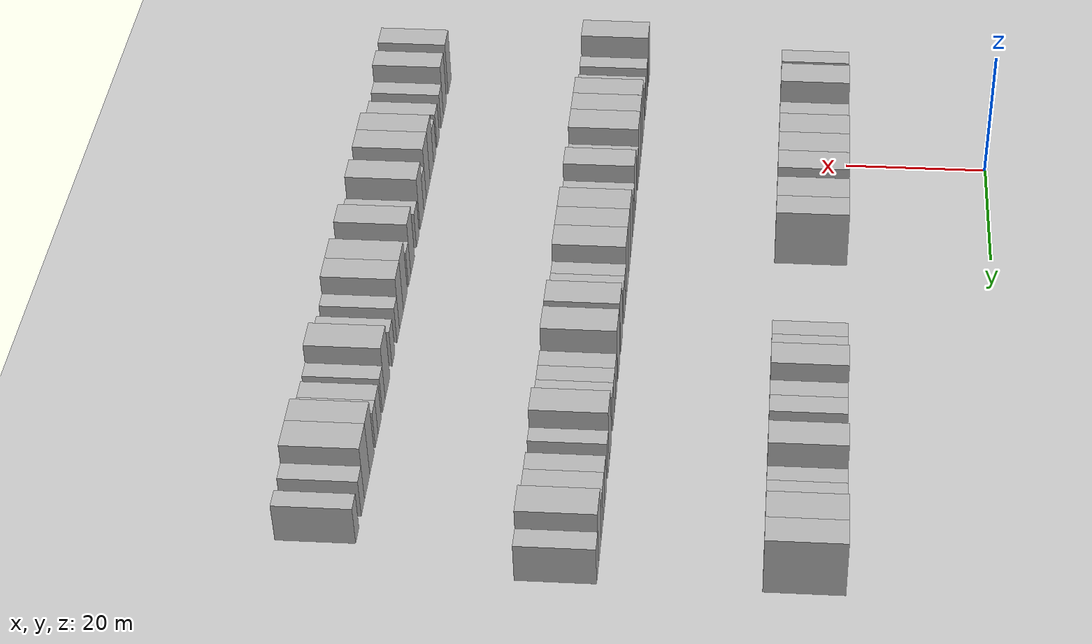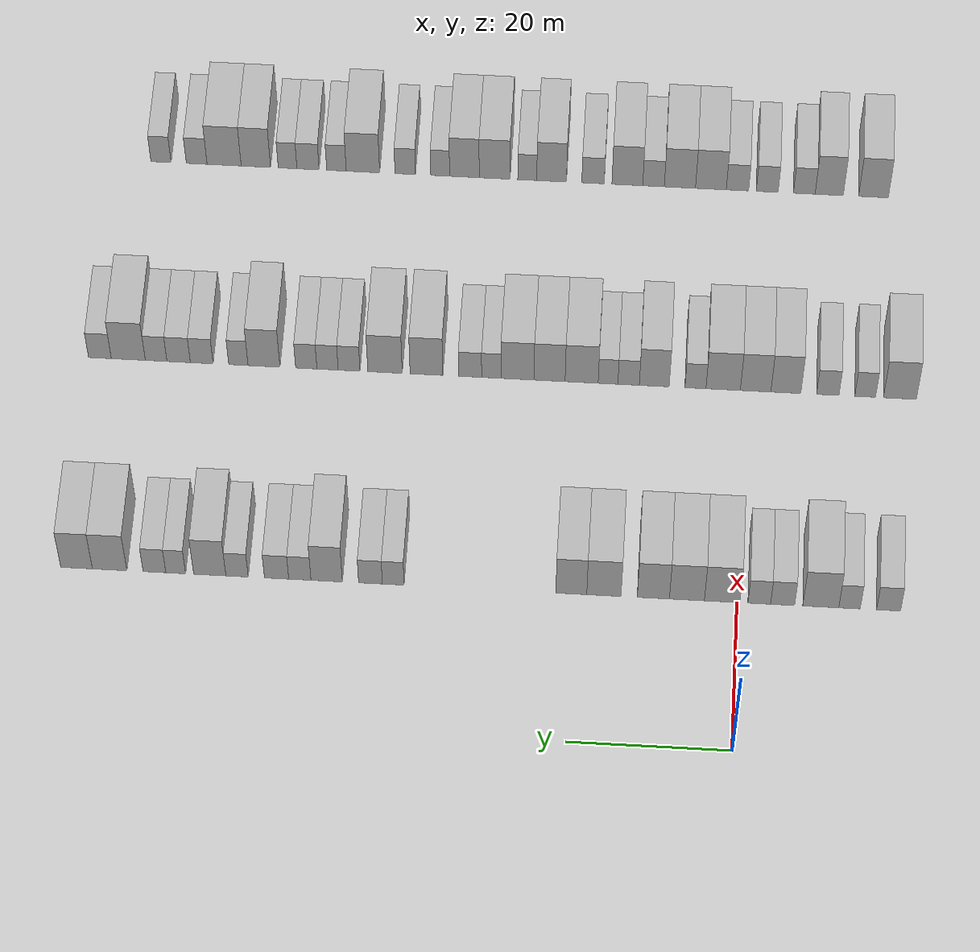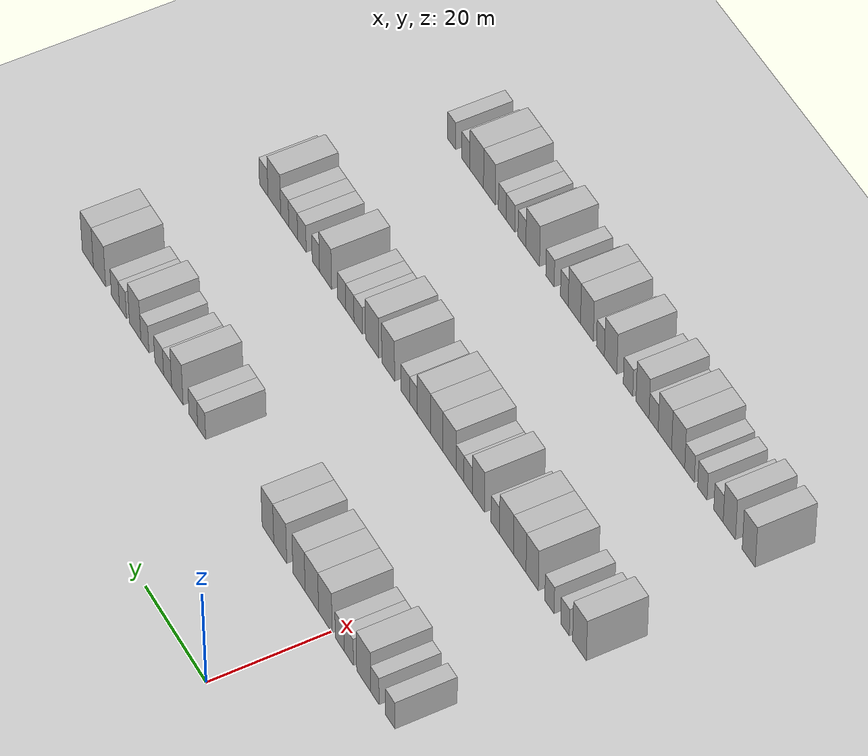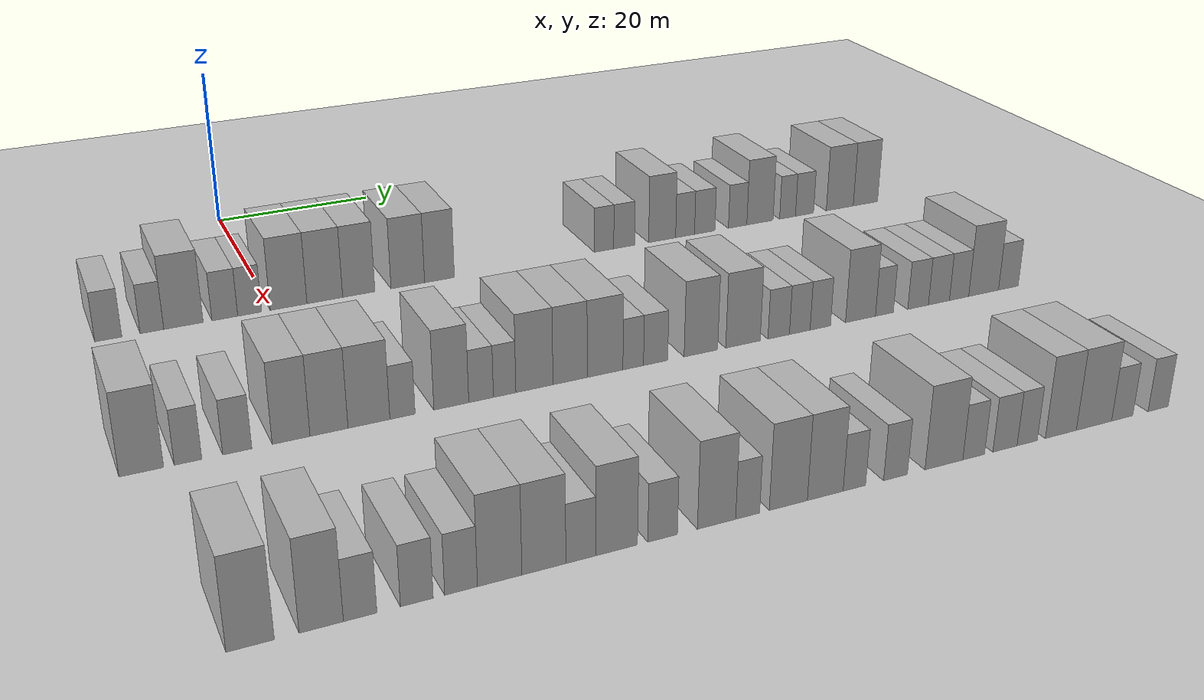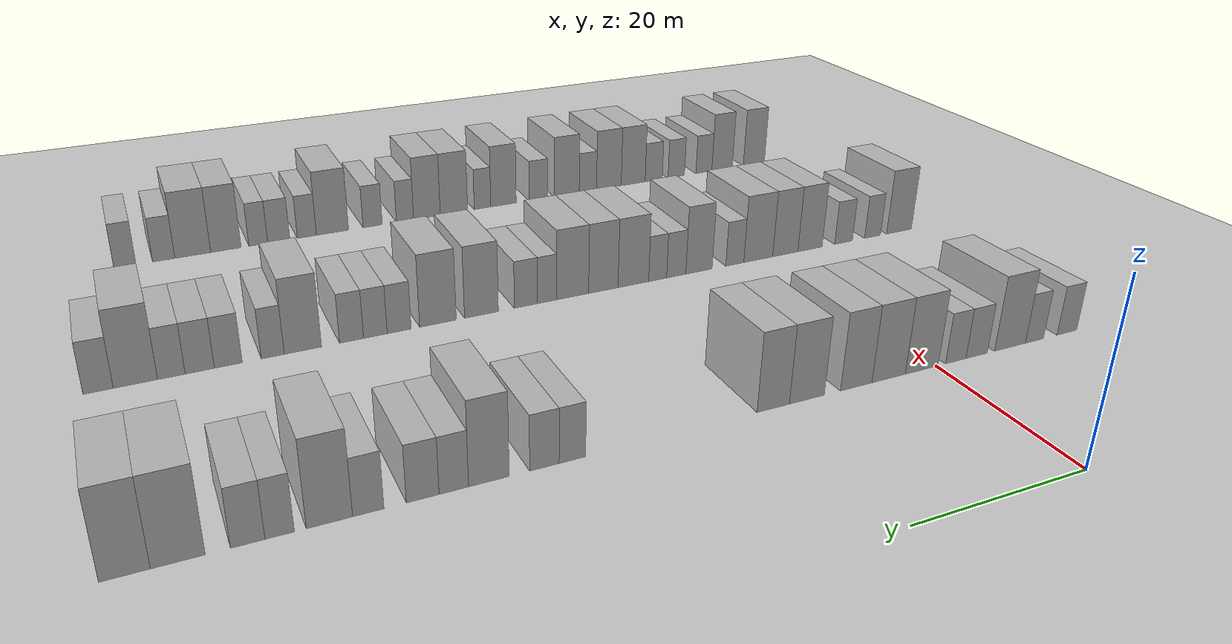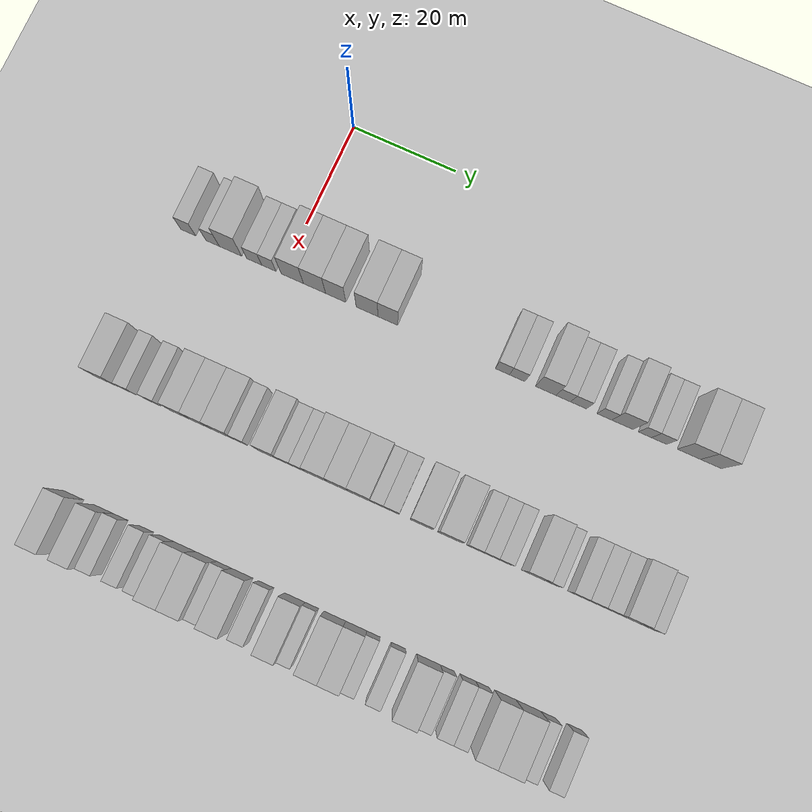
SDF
<sdf version="1.6">
 <world name="default">
  <include><name>ground_plane_1</name><uri>model://HANNAS_ground_plane</uri></include>
  <model name="building_108">
   <static>1</static>
   <pose>25.0000 -18.5001 0 0.000000 0.000000 0.000000</pose>
   <link name="link">
    <pose>0 0 3.00 0 0 0</pose>
    <collision name="collision"><geometry><box><size>10.0000 2.9320 6.0000</size></box></geometry></collision>
    <visual name="visual">
     <cast_shadows>0</cast_shadows>
     <geometry><box><size>10.0000 2.9320 6.0000</size></box></geometry>
     <material>
      <script>
       <uri>model://HANNAS_wall/materials/scripts</uri>
       <uri>model://HANNAS_wall/materials/textures</uri>
       <name>vrc/HANNAS_wall</name>
      </script>
     </material>
    </visual>
   </link>
  </model>
  <model name="building_109">
   <static>1</static>
   <pose>25.0000 -13.7276 0 0.000000 0.000000 0.000000</pose>
   <link name="link">
    <pose>0 0 3.00 0 0 0</pose>
    <collision name="collision"><geometry><box><size>10.0000 2.6130 6.0000</size></box></geometry></collision>
    <visual name="visual">
     <cast_shadows>0</cast_shadows>
     <geometry><box><size>10.0000 2.6130 6.0000</size></box></geometry>
     <material>
      <script>
       <uri>model://HANNAS_wall/materials/scripts</uri>
       <uri>model://HANNAS_wall/materials/textures</uri>
       <name>vrc/HANNAS_wall</name>
      </script>
     </material>
    </visual>
   </link>
  </model>
  <model name="building_110">
   <static>1</static>
   <pose>25.0000 -10.2153 0 0.000000 0.000000 0.000000</pose>
   <link name="link">
    <pose>0 0 4.50 0 0 0</pose>
    <collision name="collision"><geometry><box><size>10.0000 4.4118 9.0000</size></box></geometry></collision>
    <visual name="visual">
     <cast_shadows>0</cast_shadows>
     <geometry><box><size>10.0000 4.4118 9.0000</size></box></geometry>
     <material>
      <script>
       <uri>model://HANNAS_wall/materials/scripts</uri>
       <uri>model://HANNAS_wall/materials/textures</uri>
       <name>vrc/HANNAS_wall</name>
      </script>
     </material>
    </visual>
   </link>
  </model>
  <model name="building_111">
   <static>1</static>
   <pose>25.0000 -5.5347 0 0.000000 0.000000 0.000000</pose>
   <link name="link">
    <pose>0 0 3.00 0 0 0</pose>
    <collision name="collision"><geometry><box><size>10.0000 2.9493 6.0000</size></box></geometry></collision>
    <visual name="visual">
     <cast_shadows>0</cast_shadows>
     <geometry><box><size>10.0000 2.9493 6.0000</size></box></geometry>
     <material>
      <script>
       <uri>model://HANNAS_wall/materials/scripts</uri>
       <uri>model://HANNAS_wall/materials/textures</uri>
       <name>vrc/HANNAS_wall</name>
      </script>
     </material>
    </visual>
   </link>
  </model>
  <model name="building_112">
   <static>1</static>
   <pose>25.0000 -2.6738 0 0.000000 0.000000 0.000000</pose>
   <link name="link">
    <pose>0 0 3.00 0 0 0</pose>
    <collision name="collision"><geometry><box><size>10.0000 2.7725 6.0000</size></box></geometry></collision>
    <visual name="visual">
     <cast_shadows>0</cast_shadows>
     <geometry><box><size>10.0000 2.7725 6.0000</size></box></geometry>
     <material>
      <script>
       <uri>model://HANNAS_wall/materials/scripts</uri>
       <uri>model://HANNAS_wall/materials/textures</uri>
       <name>vrc/HANNAS_wall</name>
      </script>
     </material>
    </visual>
   </link>
  </model>
  <model name="building_113">
   <static>1</static>
   <pose>25.0000 1.8818 0 0.000000 0.000000 0.000000</pose>
   <link name="link">
    <pose>0 0 4.50 0 0 0</pose>
    <collision name="collision"><geometry><box><size>10.0000 4.3386 9.0000</size></box></geometry></collision>
    <visual name="visual">
     <cast_shadows>0</cast_shadows>
     <geometry><box><size>10.0000 4.3386 9.0000</size></box></geometry>
     <material>
      <script>
       <uri>model://HANNAS_wall/materials/scripts</uri>
       <uri>model://HANNAS_wall/materials/textures</uri>
       <name>vrc/HANNAS_wall</name>
      </script>
     </material>
    </visual>
   </link>
  </model>
  <model name="building_114">
   <static>1</static>
   <pose>25.0000 6.1983 0 0.000000 0.000000 0.000000</pose>
   <link name="link">
    <pose>0 0 4.50 0 0 0</pose>
    <collision name="collision"><geometry><box><size>10.0000 4.2945 9.0000</size></box></geometry></collision>
    <visual name="visual">
     <cast_shadows>0</cast_shadows>
     <geometry><box><size>10.0000 4.2945 9.0000</size></box></geometry>
     <material>
      <script>
       <uri>model://HANNAS_wall/materials/scripts</uri>
       <uri>model://HANNAS_wall/materials/textures</uri>
       <name>vrc/HANNAS_wall</name>
      </script>
     </material>
    </visual>
   </link>
  </model>
  <model name="building_115">
   <static>1</static>
   <pose>25.0000 10.3132 0 0.000000 0.000000 0.000000</pose>
   <link name="link">
    <pose>0 0 4.50 0 0 0</pose>
    <collision name="collision"><geometry><box><size>10.0000 3.9354 9.0000</size></box></geometry></collision>
    <visual name="visual">
     <cast_shadows>0</cast_shadows>
     <geometry><box><size>10.0000 3.9354 9.0000</size></box></geometry>
     <material>
      <script>
       <uri>model://HANNAS_wall/materials/scripts</uri>
       <uri>model://HANNAS_wall/materials/textures</uri>
       <name>vrc/HANNAS_wall</name>
      </script>
     </material>
    </visual>
   </link>
  </model>
  <model name="building_116">
   <static>1</static>
   <pose>25.0000 16.3832 0 0.000000 0.000000 0.000000</pose>
   <link name="link">
    <pose>0 0 4.50 0 0 0</pose>
    <collision name="collision"><geometry><box><size>10.0000 4.2046 9.0000</size></box></geometry></collision>
    <visual name="visual">
     <cast_shadows>0</cast_shadows>
     <geometry><box><size>10.0000 4.2046 9.0000</size></box></geometry>
     <material>
      <script>
       <uri>model://HANNAS_wall/materials/scripts</uri>
       <uri>model://HANNAS_wall/materials/textures</uri>
       <name>vrc/HANNAS_wall</name>
      </script>
     </material>
    </visual>
   </link>
  </model>
  <model name="building_117">
   <static>1</static>
   <pose>25.0000 20.3826 0 0.000000 0.000000 0.000000</pose>
   <link name="link">
    <pose>0 0 4.50 0 0 0</pose>
    <collision name="collision"><geometry><box><size>10.0000 3.7941 9.0000</size></box></geometry></collision>
    <visual name="visual">
     <cast_shadows>0</cast_shadows>
     <geometry><box><size>10.0000 3.7941 9.0000</size></box></geometry>
     <material>
      <script>
       <uri>model://HANNAS_wall/materials/scripts</uri>
       <uri>model://HANNAS_wall/materials/textures</uri>
       <name>vrc/HANNAS_wall</name>
      </script>
     </material>
    </visual>
   </link>
  </model>
  <model name="building_118">
   <static>1</static>
   <pose>25.0000 42.2936 0 0.000000 0.000000 0.000000</pose>
   <link name="link">
    <pose>0 0 3.00 0 0 0</pose>
    <collision name="collision"><geometry><box><size>10.0000 2.6760 6.0000</size></box></geometry></collision>
    <visual name="visual">
     <cast_shadows>0</cast_shadows>
     <geometry><box><size>10.0000 2.6760 6.0000</size></box></geometry>
     <material>
      <script>
       <uri>model://HANNAS_wall/materials/scripts</uri>
       <uri>model://HANNAS_wall/materials/textures</uri>
       <name>vrc/HANNAS_wall</name>
      </script>
     </material>
    </visual>
   </link>
  </model>
  <model name="building_119">
   <static>1</static>
   <pose>25.0000 45.0932 0 0.000000 0.000000 0.000000</pose>
   <link name="link">
    <pose>0 0 3.00 0 0 0</pose>
    <collision name="collision"><geometry><box><size>10.0000 2.9232 6.0000</size></box></geometry></collision>
    <visual name="visual">
     <cast_shadows>0</cast_shadows>
     <geometry><box><size>10.0000 2.9232 6.0000</size></box></geometry>
     <material>
      <script>
       <uri>model://HANNAS_wall/materials/scripts</uri>
       <uri>model://HANNAS_wall/materials/textures</uri>
       <name>vrc/HANNAS_wall</name>
      </script>
     </material>
    </visual>
   </link>
  </model>
  <model name="building_120">
   <static>1</static>
   <pose>25.0000 50.4909 0 0.000000 0.000000 0.000000</pose>
   <link name="link">
    <pose>0 0 4.50 0 0 0</pose>
    <collision name="collision"><geometry><box><size>10.0000 3.8721 9.0000</size></box></geometry></collision>
    <visual name="visual">
     <cast_shadows>0</cast_shadows>
     <geometry><box><size>10.0000 3.8721 9.0000</size></box></geometry>
     <material>
      <script>
       <uri>model://HANNAS_wall/materials/scripts</uri>
       <uri>model://HANNAS_wall/materials/textures</uri>
       <name>vrc/HANNAS_wall</name>
      </script>
     </material>
    </visual>
   </link>
  </model>
  <model name="building_121">
   <static>1</static>
   <pose>25.0000 53.7997 0 0.000000 0.000000 0.000000</pose>
   <link name="link">
    <pose>0 0 3.00 0 0 0</pose>
    <collision name="collision"><geometry><box><size>10.0000 2.7457 6.0000</size></box></geometry></collision>
    <visual name="visual">
     <cast_shadows>0</cast_shadows>
     <geometry><box><size>10.0000 2.7457 6.0000</size></box></geometry>
     <material>
      <script>
       <uri>model://HANNAS_wall/materials/scripts</uri>
       <uri>model://HANNAS_wall/materials/textures</uri>
       <name>vrc/HANNAS_wall</name>
      </script>
     </material>
    </visual>
   </link>
  </model>
  <model name="building_122">
   <static>1</static>
   <pose>25.0000 56.6708 0 0.000000 0.000000 0.000000</pose>
   <link name="link">
    <pose>0 0 3.00 0 0 0</pose>
    <collision name="collision"><geometry><box><size>10.0000 2.9964 6.0000</size></box></geometry></collision>
    <visual name="visual">
     <cast_shadows>0</cast_shadows>
     <geometry><box><size>10.0000 2.9964 6.0000</size></box></geometry>
     <material>
      <script>
       <uri>model://HANNAS_wall/materials/scripts</uri>
       <uri>model://HANNAS_wall/materials/textures</uri>
       <name>vrc/HANNAS_wall</name>
      </script>
     </material>
    </visual>
   </link>
  </model>
  <model name="building_123">
   <static>1</static>
   <pose>25.0000 61.5478 0 0.000000 0.000000 0.000000</pose>
   <link name="link">
    <pose>0 0 3.00 0 0 0</pose>
    <collision name="collision"><geometry><box><size>10.0000 2.7576 6.0000</size></box></geometry></collision>
    <visual name="visual">
     <cast_shadows>0</cast_shadows>
     <geometry><box><size>10.0000 2.7576 6.0000</size></box></geometry>
     <material>
      <script>
       <uri>model://HANNAS_wall/materials/scripts</uri>
       <uri>model://HANNAS_wall/materials/textures</uri>
       <name>vrc/HANNAS_wall</name>
      </script>
     </material>
    </visual>
   </link>
  </model>
  <model name="building_124">
   <static>1</static>
   <pose>25.0000 64.9143 0 0.000000 0.000000 0.000000</pose>
   <link name="link">
    <pose>0 0 4.50 0 0 0</pose>
    <collision name="collision"><geometry><box><size>10.0000 3.9753 9.0000</size></box></geometry></collision>
    <visual name="visual">
     <cast_shadows>0</cast_shadows>
     <geometry><box><size>10.0000 3.9753 9.0000</size></box></geometry>
     <material>
      <script>
       <uri>model://HANNAS_wall/materials/scripts</uri>
       <uri>model://HANNAS_wall/materials/textures</uri>
       <name>vrc/HANNAS_wall</name>
      </script>
     </material>
    </visual>
   </link>
  </model>
  <model name="building_125">
   <static>1</static>
   <pose>25.0000 69.1239 0 0.000000 0.000000 0.000000</pose>
   <link name="link">
    <pose>0 0 3.00 0 0 0</pose>
    <collision name="collision"><geometry><box><size>10.0000 2.4438 6.0000</size></box></geometry></collision>
    <visual name="visual">
     <cast_shadows>0</cast_shadows>
     <geometry><box><size>10.0000 2.4438 6.0000</size></box></geometry>
     <material>
      <script>
       <uri>model://HANNAS_wall/materials/scripts</uri>
       <uri>model://HANNAS_wall/materials/textures</uri>
       <name>vrc/HANNAS_wall</name>
      </script>
     </material>
    </visual>
   </link>
  </model>
  <model name="building_126">
   <static>1</static>
   <pose>25.0000 71.7497 0 0.000000 0.000000 0.000000</pose>
   <link name="link">
    <pose>0 0 3.00 0 0 0</pose>
    <collision name="collision"><geometry><box><size>10.0000 2.8078 6.0000</size></box></geometry></collision>
    <visual name="visual">
     <cast_shadows>0</cast_shadows>
     <geometry><box><size>10.0000 2.8078 6.0000</size></box></geometry>
     <material>
      <script>
       <uri>model://HANNAS_wall/materials/scripts</uri>
       <uri>model://HANNAS_wall/materials/textures</uri>
       <name>vrc/HANNAS_wall</name>
      </script>
     </material>
    </visual>
   </link>
  </model>
  <model name="building_127">
   <static>1</static>
   <pose>25.0000 77.2925 0 0.000000 0.000000 0.000000</pose>
   <link name="link">
    <pose>0 0 4.50 0 0 0</pose>
    <collision name="collision"><geometry><box><size>10.0000 4.2779 9.0000</size></box></geometry></collision>
    <visual name="visual">
     <cast_shadows>0</cast_shadows>
     <geometry><box><size>10.0000 4.2779 9.0000</size></box></geometry>
     <material>
      <script>
       <uri>model://HANNAS_wall/materials/scripts</uri>
       <uri>model://HANNAS_wall/materials/textures</uri>
       <name>vrc/HANNAS_wall</name>
      </script>
     </material>
    </visual>
   </link>
  </model>
  <model name="building_128">
   <static>1</static>
   <pose>25.0000 81.3833 0 0.000000 0.000000 0.000000</pose>
   <link name="link">
    <pose>0 0 4.50 0 0 0</pose>
    <collision name="collision"><geometry><box><size>10.0000 3.9038 9.0000</size></box></geometry></collision>
    <visual name="visual">
     <cast_shadows>0</cast_shadows>
     <geometry><box><size>10.0000 3.9038 9.0000</size></box></geometry>
     <material>
      <script>
       <uri>model://HANNAS_wall/materials/scripts</uri>
       <uri>model://HANNAS_wall/materials/textures</uri>
       <name>vrc/HANNAS_wall</name>
      </script>
     </material>
    </visual>
   </link>
  </model>
  <model name="building_328">
   <static>1</static>
   <pose>55.0000 -19.6609 0 0.000000 0.000000 0.000000</pose>
   <link name="link">
    <pose>0 0 4.50 0 0 0</pose>
    <collision name="collision"><geometry><box><size>10.0000 4.1442 9.0000</size></box></geometry></collision>
    <visual name="visual">
     <cast_shadows>0</cast_shadows>
     <geometry><box><size>10.0000 4.1442 9.0000</size></box></geometry>
     <material>
      <script>
       <uri>model://HANNAS_wall/materials/scripts</uri>
       <uri>model://HANNAS_wall/materials/textures</uri>
       <name>vrc/HANNAS_wall</name>
      </script>
     </material>
    </visual>
   </link>
  </model>
  <model name="building_329">
   <static>1</static>
   <pose>55.0000 -15.2833 0 0.000000 0.000000 0.000000</pose>
   <link name="link">
    <pose>0 0 3.00 0 0 0</pose>
    <collision name="collision"><geometry><box><size>10.0000 2.6110 6.0000</size></box></geometry></collision>
    <visual name="visual">
     <cast_shadows>0</cast_shadows>
     <geometry><box><size>10.0000 2.6110 6.0000</size></box></geometry>
     <material>
      <script>
       <uri>model://HANNAS_wall/materials/scripts</uri>
       <uri>model://HANNAS_wall/materials/textures</uri>
       <name>vrc/HANNAS_wall</name>
      </script>
     </material>
    </visual>
   </link>
  </model>
  <model name="building_330">
   <static>1</static>
   <pose>55.0000 -10.5652 0 0.000000 0.000000 0.000000</pose>
   <link name="link">
    <pose>0 0 3.00 0 0 0</pose>
    <collision name="collision"><geometry><box><size>10.0000 2.8251 6.0000</size></box></geometry></collision>
    <visual name="visual">
     <cast_shadows>0</cast_shadows>
     <geometry><box><size>10.0000 2.8251 6.0000</size></box></geometry>
     <material>
      <script>
       <uri>model://HANNAS_wall/materials/scripts</uri>
       <uri>model://HANNAS_wall/materials/textures</uri>
       <name>vrc/HANNAS_wall</name>
      </script>
     </material>
    </visual>
   </link>
  </model>
  <model name="building_331">
   <static>1</static>
   <pose>55.0000 -5.2670 0 0.000000 0.000000 0.000000</pose>
   <link name="link">
    <pose>0 0 4.50 0 0 0</pose>
    <collision name="collision"><geometry><box><size>10.0000 3.7712 9.0000</size></box></geometry></collision>
    <visual name="visual">
     <cast_shadows>0</cast_shadows>
     <geometry><box><size>10.0000 3.7712 9.0000</size></box></geometry>
     <material>
      <script>
       <uri>model://HANNAS_wall/materials/scripts</uri>
       <uri>model://HANNAS_wall/materials/textures</uri>
       <name>vrc/HANNAS_wall</name>
      </script>
     </material>
    </visual>
   </link>
  </model>
  <model name="building_332">
   <static>1</static>
   <pose>55.0000 -1.4505 0 0.000000 0.000000 0.000000</pose>
   <link name="link">
    <pose>0 0 4.50 0 0 0</pose>
    <collision name="collision"><geometry><box><size>10.0000 3.8618 9.0000</size></box></geometry></collision>
    <visual name="visual">
     <cast_shadows>0</cast_shadows>
     <geometry><box><size>10.0000 3.8618 9.0000</size></box></geometry>
     <material>
      <script>
       <uri>model://HANNAS_wall/materials/scripts</uri>
       <uri>model://HANNAS_wall/materials/textures</uri>
       <name>vrc/HANNAS_wall</name>
      </script>
     </material>
    </visual>
   </link>
  </model>
  <model name="building_333">
   <static>1</static>
   <pose>55.0000 2.6513 0 0.000000 0.000000 0.000000</pose>
   <link name="link">
    <pose>0 0 4.50 0 0 0</pose>
    <collision name="collision"><geometry><box><size>10.0000 4.3418 9.0000</size></box></geometry></collision>
    <visual name="visual">
     <cast_shadows>0</cast_shadows>
     <geometry><box><size>10.0000 4.3418 9.0000</size></box></geometry>
     <material>
      <script>
       <uri>model://HANNAS_wall/materials/scripts</uri>
       <uri>model://HANNAS_wall/materials/textures</uri>
       <name>vrc/HANNAS_wall</name>
      </script>
     </material>
    </visual>
   </link>
  </model>
  <model name="building_334">
   <static>1</static>
   <pose>55.0000 6.1501 0 0.000000 0.000000 0.000000</pose>
   <link name="link">
    <pose>0 0 3.00 0 0 0</pose>
    <collision name="collision"><geometry><box><size>10.0000 2.6556 6.0000</size></box></geometry></collision>
    <visual name="visual">
     <cast_shadows>0</cast_shadows>
     <geometry><box><size>10.0000 2.6556 6.0000</size></box></geometry>
     <material>
      <script>
       <uri>model://HANNAS_wall/materials/scripts</uri>
       <uri>model://HANNAS_wall/materials/textures</uri>
       <name>vrc/HANNAS_wall</name>
      </script>
     </material>
    </visual>
   </link>
  </model>
  <model name="building_335">
   <static>1</static>
   <pose>55.0000 11.3650 0 0.000000 0.000000 0.000000</pose>
   <link name="link">
    <pose>0 0 4.50 0 0 0</pose>
    <collision name="collision"><geometry><box><size>10.0000 3.7742 9.0000</size></box></geometry></collision>
    <visual name="visual">
     <cast_shadows>0</cast_shadows>
     <geometry><box><size>10.0000 3.7742 9.0000</size></box></geometry>
     <material>
      <script>
       <uri>model://HANNAS_wall/materials/scripts</uri>
       <uri>model://HANNAS_wall/materials/textures</uri>
       <name>vrc/HANNAS_wall</name>
      </script>
     </material>
    </visual>
   </link>
  </model>
  <model name="building_336">
   <static>1</static>
   <pose>55.0000 14.6048 0 0.000000 0.000000 0.000000</pose>
   <link name="link">
    <pose>0 0 3.00 0 0 0</pose>
    <collision name="collision"><geometry><box><size>10.0000 2.7056 6.0000</size></box></geometry></collision>
    <visual name="visual">
     <cast_shadows>0</cast_shadows>
     <geometry><box><size>10.0000 2.7056 6.0000</size></box></geometry>
     <material>
      <script>
       <uri>model://HANNAS_wall/materials/scripts</uri>
       <uri>model://HANNAS_wall/materials/textures</uri>
       <name>vrc/HANNAS_wall</name>
      </script>
     </material>
    </visual>
   </link>
  </model>
  <model name="building_337">
   <static>1</static>
   <pose>55.0000 17.2067 0 0.000000 0.000000 0.000000</pose>
   <link name="link">
    <pose>0 0 3.00 0 0 0</pose>
    <collision name="collision"><geometry><box><size>10.0000 2.4981 6.0000</size></box></geometry></collision>
    <visual name="visual">
     <cast_shadows>0</cast_shadows>
     <geometry><box><size>10.0000 2.4981 6.0000</size></box></geometry>
     <material>
      <script>
       <uri>model://HANNAS_wall/materials/scripts</uri>
       <uri>model://HANNAS_wall/materials/textures</uri>
       <name>vrc/HANNAS_wall</name>
      </script>
     </material>
    </visual>
   </link>
  </model>
  <model name="building_338">
   <static>1</static>
   <pose>55.0000 20.5485 0 0.000000 0.000000 0.000000</pose>
   <link name="link">
    <pose>0 0 4.50 0 0 0</pose>
    <collision name="collision"><geometry><box><size>10.0000 4.1855 9.0000</size></box></geometry></collision>
    <visual name="visual">
     <cast_shadows>0</cast_shadows>
     <geometry><box><size>10.0000 4.1855 9.0000</size></box></geometry>
     <material>
      <script>
       <uri>model://HANNAS_wall/materials/scripts</uri>
       <uri>model://HANNAS_wall/materials/textures</uri>
       <name>vrc/HANNAS_wall</name>
      </script>
     </material>
    </visual>
   </link>
  </model>
  <model name="building_339">
   <static>1</static>
   <pose>55.0000 24.6072 0 0.000000 0.000000 0.000000</pose>
   <link name="link">
    <pose>0 0 4.50 0 0 0</pose>
    <collision name="collision"><geometry><box><size>10.0000 3.9318 9.0000</size></box></geometry></collision>
    <visual name="visual">
     <cast_shadows>0</cast_shadows>
     <geometry><box><size>10.0000 3.9318 9.0000</size></box></geometry>
     <material>
      <script>
       <uri>model://HANNAS_wall/materials/scripts</uri>
       <uri>model://HANNAS_wall/materials/textures</uri>
       <name>vrc/HANNAS_wall</name>
      </script>
     </material>
    </visual>
   </link>
  </model>
  <model name="building_340">
   <static>1</static>
   <pose>55.0000 28.6716 0 0.000000 0.000000 0.000000</pose>
   <link name="link">
    <pose>0 0 4.50 0 0 0</pose>
    <collision name="collision"><geometry><box><size>10.0000 4.1970 9.0000</size></box></geometry></collision>
    <visual name="visual">
     <cast_shadows>0</cast_shadows>
     <geometry><box><size>10.0000 4.1970 9.0000</size></box></geometry>
     <material>
      <script>
       <uri>model://HANNAS_wall/materials/scripts</uri>
       <uri>model://HANNAS_wall/materials/textures</uri>
       <name>vrc/HANNAS_wall</name>
      </script>
     </material>
    </visual>
   </link>
  </model>
  <model name="building_341">
   <static>1</static>
   <pose>55.0000 31.9968 0 0.000000 0.000000 0.000000</pose>
   <link name="link">
    <pose>0 0 3.00 0 0 0</pose>
    <collision name="collision"><geometry><box><size>10.0000 2.4534 6.0000</size></box></geometry></collision>
    <visual name="visual">
     <cast_shadows>0</cast_shadows>
     <geometry><box><size>10.0000 2.4534 6.0000</size></box></geometry>
     <material>
      <script>
       <uri>model://HANNAS_wall/materials/scripts</uri>
       <uri>model://HANNAS_wall/materials/textures</uri>
       <name>vrc/HANNAS_wall</name>
      </script>
     </material>
    </visual>
   </link>
  </model>
  <model name="building_342">
   <static>1</static>
   <pose>55.0000 34.6799 0 0.000000 0.000000 0.000000</pose>
   <link name="link">
    <pose>0 0 3.00 0 0 0</pose>
    <collision name="collision"><geometry><box><size>10.0000 2.9128 6.0000</size></box></geometry></collision>
    <visual name="visual">
     <cast_shadows>0</cast_shadows>
     <geometry><box><size>10.0000 2.9128 6.0000</size></box></geometry>
     <material>
      <script>
       <uri>model://HANNAS_wall/materials/scripts</uri>
       <uri>model://HANNAS_wall/materials/textures</uri>
       <name>vrc/HANNAS_wall</name>
      </script>
     </material>
    </visual>
   </link>
  </model>
  <model name="building_343">
   <static>1</static>
   <pose>55.0000 40.2131 0 0.000000 0.000000 0.000000</pose>
   <link name="link">
    <pose>0 0 4.50 0 0 0</pose>
    <collision name="collision"><geometry><box><size>10.0000 4.1536 9.0000</size></box></geometry></collision>
    <visual name="visual">
     <cast_shadows>0</cast_shadows>
     <geometry><box><size>10.0000 4.1536 9.0000</size></box></geometry>
     <material>
      <script>
       <uri>model://HANNAS_wall/materials/scripts</uri>
       <uri>model://HANNAS_wall/materials/textures</uri>
       <name>vrc/HANNAS_wall</name>
      </script>
     </material>
    </visual>
   </link>
  </model>
  <model name="building_344">
   <static>1</static>
   <pose>55.0000 45.4711 0 0.000000 0.000000 0.000000</pose>
   <link name="link">
    <pose>0 0 4.50 0 0 0</pose>
    <collision name="collision"><geometry><box><size>10.0000 4.3625 9.0000</size></box></geometry></collision>
    <visual name="visual">
     <cast_shadows>0</cast_shadows>
     <geometry><box><size>10.0000 4.3625 9.0000</size></box></geometry>
     <material>
      <script>
       <uri>model://HANNAS_wall/materials/scripts</uri>
       <uri>model://HANNAS_wall/materials/textures</uri>
       <name>vrc/HANNAS_wall</name>
      </script>
     </material>
    </visual>
   </link>
  </model>
  <model name="building_345">
   <static>1</static>
   <pose>55.0000 50.0397 0 0.000000 0.000000 0.000000</pose>
   <link name="link">
    <pose>0 0 3.00 0 0 0</pose>
    <collision name="collision"><geometry><box><size>10.0000 2.7745 6.0000</size></box></geometry></collision>
    <visual name="visual">
     <cast_shadows>0</cast_shadows>
     <geometry><box><size>10.0000 2.7745 6.0000</size></box></geometry>
     <material>
      <script>
       <uri>model://HANNAS_wall/materials/scripts</uri>
       <uri>model://HANNAS_wall/materials/textures</uri>
       <name>vrc/HANNAS_wall</name>
      </script>
     </material>
    </visual>
   </link>
  </model>
  <model name="building_346">
   <static>1</static>
   <pose>55.0000 52.7769 0 0.000000 0.000000 0.000000</pose>
   <link name="link">
    <pose>0 0 3.00 0 0 0</pose>
    <collision name="collision"><geometry><box><size>10.0000 2.7000 6.0000</size></box></geometry></collision>
    <visual name="visual">
     <cast_shadows>0</cast_shadows>
     <geometry><box><size>10.0000 2.7000 6.0000</size></box></geometry>
     <material>
      <script>
       <uri>model://HANNAS_wall/materials/scripts</uri>
       <uri>model://HANNAS_wall/materials/textures</uri>
       <name>vrc/HANNAS_wall</name>
      </script>
     </material>
    </visual>
   </link>
  </model>
  <model name="building_347">
   <static>1</static>
   <pose>55.0000 55.4763 0 0.000000 0.000000 0.000000</pose>
   <link name="link">
    <pose>0 0 3.00 0 0 0</pose>
    <collision name="collision"><geometry><box><size>10.0000 2.6987 6.0000</size></box></geometry></collision>
    <visual name="visual">
     <cast_shadows>0</cast_shadows>
     <geometry><box><size>10.0000 2.6987 6.0000</size></box></geometry>
     <material>
      <script>
       <uri>model://HANNAS_wall/materials/scripts</uri>
       <uri>model://HANNAS_wall/materials/textures</uri>
       <name>vrc/HANNAS_wall</name>
      </script>
     </material>
    </visual>
   </link>
  </model>
  <model name="building_348">
   <static>1</static>
   <pose>55.0000 60.8541 0 0.000000 0.000000 0.000000</pose>
   <link name="link">
    <pose>0 0 4.50 0 0 0</pose>
    <collision name="collision"><geometry><box><size>10.0000 4.0571 9.0000</size></box></geometry></collision>
    <visual name="visual">
     <cast_shadows>0</cast_shadows>
     <geometry><box><size>10.0000 4.0571 9.0000</size></box></geometry>
     <material>
      <script>
       <uri>model://HANNAS_wall/materials/scripts</uri>
       <uri>model://HANNAS_wall/materials/textures</uri>
       <name>vrc/HANNAS_wall</name>
      </script>
     </material>
    </visual>
   </link>
  </model>
  <model name="building_349">
   <static>1</static>
   <pose>55.0000 64.1097 0 0.000000 0.000000 0.000000</pose>
   <link name="link">
    <pose>0 0 3.00 0 0 0</pose>
    <collision name="collision"><geometry><box><size>10.0000 2.4541 6.0000</size></box></geometry></collision>
    <visual name="visual">
     <cast_shadows>0</cast_shadows>
     <geometry><box><size>10.0000 2.4541 6.0000</size></box></geometry>
     <material>
      <script>
       <uri>model://HANNAS_wall/materials/scripts</uri>
       <uri>model://HANNAS_wall/materials/textures</uri>
       <name>vrc/HANNAS_wall</name>
      </script>
     </material>
    </visual>
   </link>
  </model>
  <model name="building_350">
   <static>1</static>
   <pose>55.0000 68.7809 0 0.000000 0.000000 0.000000</pose>
   <link name="link">
    <pose>0 0 3.00 0 0 0</pose>
    <collision name="collision"><geometry><box><size>10.0000 2.8884 6.0000</size></box></geometry></collision>
    <visual name="visual">
     <cast_shadows>0</cast_shadows>
     <geometry><box><size>10.0000 2.8884 6.0000</size></box></geometry>
     <material>
      <script>
       <uri>model://HANNAS_wall/materials/scripts</uri>
       <uri>model://HANNAS_wall/materials/textures</uri>
       <name>vrc/HANNAS_wall</name>
      </script>
     </material>
    </visual>
   </link>
  </model>
  <model name="building_351">
   <static>1</static>
   <pose>55.0000 71.7139 0 0.000000 0.000000 0.000000</pose>
   <link name="link">
    <pose>0 0 3.00 0 0 0</pose>
    <collision name="collision"><geometry><box><size>10.0000 2.9775 6.0000</size></box></geometry></collision>
    <visual name="visual">
     <cast_shadows>0</cast_shadows>
     <geometry><box><size>10.0000 2.9775 6.0000</size></box></geometry>
     <material>
      <script>
       <uri>model://HANNAS_wall/materials/scripts</uri>
       <uri>model://HANNAS_wall/materials/textures</uri>
       <name>vrc/HANNAS_wall</name>
      </script>
     </material>
    </visual>
   </link>
  </model>
  <model name="building_352">
   <static>1</static>
   <pose>55.0000 74.5839 0 0.000000 0.000000 0.000000</pose>
   <link name="link">
    <pose>0 0 3.00 0 0 0</pose>
    <collision name="collision"><geometry><box><size>10.0000 2.7626 6.0000</size></box></geometry></collision>
    <visual name="visual">
     <cast_shadows>0</cast_shadows>
     <geometry><box><size>10.0000 2.7626 6.0000</size></box></geometry>
     <material>
      <script>
       <uri>model://HANNAS_wall/materials/scripts</uri>
       <uri>model://HANNAS_wall/materials/textures</uri>
       <name>vrc/HANNAS_wall</name>
      </script>
     </material>
    </visual>
   </link>
  </model>
  <model name="building_353">
   <static>1</static>
   <pose>55.0000 78.1338 0 0.000000 0.000000 0.000000</pose>
   <link name="link">
    <pose>0 0 4.50 0 0 0</pose>
    <collision name="collision"><geometry><box><size>10.0000 4.3372 9.0000</size></box></geometry></collision>
    <visual name="visual">
     <cast_shadows>0</cast_shadows>
     <geometry><box><size>10.0000 4.3372 9.0000</size></box></geometry>
     <material>
      <script>
       <uri>model://HANNAS_wall/materials/scripts</uri>
       <uri>model://HANNAS_wall/materials/textures</uri>
       <name>vrc/HANNAS_wall</name>
      </script>
     </material>
    </visual>
   </link>
  </model>
  <model name="building_354">
   <static>1</static>
   <pose>55.0000 81.7545 0 0.000000 0.000000 0.000000</pose>
   <link name="link">
    <pose>0 0 3.00 0 0 0</pose>
    <collision name="collision"><geometry><box><size>10.0000 2.9041 6.0000</size></box></geometry></collision>
    <visual name="visual">
     <cast_shadows>0</cast_shadows>
     <geometry><box><size>10.0000 2.9041 6.0000</size></box></geometry>
     <material>
      <script>
       <uri>model://HANNAS_wall/materials/scripts</uri>
       <uri>model://HANNAS_wall/materials/textures</uri>
       <name>vrc/HANNAS_wall</name>
      </script>
     </material>
    </visual>
   </link>
  </model>
  <model name="building_553">
   <static>1</static>
   <pose>85.0000 -15.9999 0 0.000000 0.000000 0.000000</pose>
   <link name="link">
    <pose>0 0 4.50 0 0 0</pose>
    <collision name="collision"><geometry><box><size>10.0000 3.8512 9.0000</size></box></geometry></collision>
    <visual name="visual">
     <cast_shadows>0</cast_shadows>
     <geometry><box><size>10.0000 3.8512 9.0000</size></box></geometry>
     <material>
      <script>
       <uri>model://HANNAS_wall/materials/scripts</uri>
       <uri>model://HANNAS_wall/materials/textures</uri>
       <name>vrc/HANNAS_wall</name>
      </script>
     </material>
    </visual>
   </link>
  </model>
  <model name="building_554">
   <static>1</static>
   <pose>85.0000 -10.2463 0 0.000000 0.000000 0.000000</pose>
   <link name="link">
    <pose>0 0 4.50 0 0 0</pose>
    <collision name="collision"><geometry><box><size>10.0000 3.6561 9.0000</size></box></geometry></collision>
    <visual name="visual">
     <cast_shadows>0</cast_shadows>
     <geometry><box><size>10.0000 3.6561 9.0000</size></box></geometry>
     <material>
      <script>
       <uri>model://HANNAS_wall/materials/scripts</uri>
       <uri>model://HANNAS_wall/materials/textures</uri>
       <name>vrc/HANNAS_wall</name>
      </script>
     </material>
    </visual>
   </link>
  </model>
  <model name="building_555">
   <static>1</static>
   <pose>85.0000 -7.0097 0 0.000000 0.000000 0.000000</pose>
   <link name="link">
    <pose>0 0 3.00 0 0 0</pose>
    <collision name="collision"><geometry><box><size>10.0000 2.8170 6.0000</size></box></geometry></collision>
    <visual name="visual">
     <cast_shadows>0</cast_shadows>
     <geometry><box><size>10.0000 2.8170 6.0000</size></box></geometry>
     <material>
      <script>
       <uri>model://HANNAS_wall/materials/scripts</uri>
       <uri>model://HANNAS_wall/materials/textures</uri>
       <name>vrc/HANNAS_wall</name>
      </script>
     </material>
    </visual>
   </link>
  </model>
  <model name="building_556">
   <static>1</static>
   <pose>85.0000 -2.1822 0 0.000000 0.000000 0.000000</pose>
   <link name="link">
    <pose>0 0 3.00 0 0 0</pose>
    <collision name="collision"><geometry><box><size>10.0000 2.8380 6.0000</size></box></geometry></collision>
    <visual name="visual">
     <cast_shadows>0</cast_shadows>
     <geometry><box><size>10.0000 2.8380 6.0000</size></box></geometry>
     <material>
      <script>
       <uri>model://HANNAS_wall/materials/scripts</uri>
       <uri>model://HANNAS_wall/materials/textures</uri>
       <name>vrc/HANNAS_wall</name>
      </script>
     </material>
    </visual>
   </link>
  </model>
  <model name="building_557">
   <static>1</static>
   <pose>85.0000 1.6888 0 0.000000 0.000000 0.000000</pose>
   <link name="link">
    <pose>0 0 3.00 0 0 0</pose>
    <collision name="collision"><geometry><box><size>10.0000 2.9039 6.0000</size></box></geometry></collision>
    <visual name="visual">
     <cast_shadows>0</cast_shadows>
     <geometry><box><size>10.0000 2.9039 6.0000</size></box></geometry>
     <material>
      <script>
       <uri>model://HANNAS_wall/materials/scripts</uri>
       <uri>model://HANNAS_wall/materials/textures</uri>
       <name>vrc/HANNAS_wall</name>
      </script>
     </material>
    </visual>
   </link>
  </model>
  <model name="building_558">
   <static>1</static>
   <pose>85.0000 5.1450 0 0.000000 0.000000 0.000000</pose>
   <link name="link">
    <pose>0 0 4.50 0 0 0</pose>
    <collision name="collision"><geometry><box><size>10.0000 4.0085 9.0000</size></box></geometry></collision>
    <visual name="visual">
     <cast_shadows>0</cast_shadows>
     <geometry><box><size>10.0000 4.0085 9.0000</size></box></geometry>
     <material>
      <script>
       <uri>model://HANNAS_wall/materials/scripts</uri>
       <uri>model://HANNAS_wall/materials/textures</uri>
       <name>vrc/HANNAS_wall</name>
      </script>
     </material>
    </visual>
   </link>
  </model>
  <model name="building_559">
   <static>1</static>
   <pose>85.0000 9.1800 0 0.000000 0.000000 0.000000</pose>
   <link name="link">
    <pose>0 0 4.50 0 0 0</pose>
    <collision name="collision"><geometry><box><size>10.0000 4.0614 9.0000</size></box></geometry></collision>
    <visual name="visual">
     <cast_shadows>0</cast_shadows>
     <geometry><box><size>10.0000 4.0614 9.0000</size></box></geometry>
     <material>
      <script>
       <uri>model://HANNAS_wall/materials/scripts</uri>
       <uri>model://HANNAS_wall/materials/textures</uri>
       <name>vrc/HANNAS_wall</name>
      </script>
     </material>
    </visual>
   </link>
  </model>
  <model name="building_560">
   <static>1</static>
   <pose>85.0000 12.6171 0 0.000000 0.000000 0.000000</pose>
   <link name="link">
    <pose>0 0 3.00 0 0 0</pose>
    <collision name="collision"><geometry><box><size>10.0000 2.8129 6.0000</size></box></geometry></collision>
    <visual name="visual">
     <cast_shadows>0</cast_shadows>
     <geometry><box><size>10.0000 2.8129 6.0000</size></box></geometry>
     <material>
      <script>
       <uri>model://HANNAS_wall/materials/scripts</uri>
       <uri>model://HANNAS_wall/materials/textures</uri>
       <name>vrc/HANNAS_wall</name>
      </script>
     </material>
    </visual>
   </link>
  </model>
  <model name="building_561">
   <static>1</static>
   <pose>85.0000 16.0271 0 0.000000 0.000000 0.000000</pose>
   <link name="link">
    <pose>0 0 4.50 0 0 0</pose>
    <collision name="collision"><geometry><box><size>10.0000 4.0071 9.0000</size></box></geometry></collision>
    <visual name="visual">
     <cast_shadows>0</cast_shadows>
     <geometry><box><size>10.0000 4.0071 9.0000</size></box></geometry>
     <material>
      <script>
       <uri>model://HANNAS_wall/materials/scripts</uri>
       <uri>model://HANNAS_wall/materials/textures</uri>
       <name>vrc/HANNAS_wall</name>
      </script>
     </material>
    </visual>
   </link>
  </model>
  <model name="building_562">
   <static>1</static>
   <pose>85.0000 20.4906 0 0.000000 0.000000 0.000000</pose>
   <link name="link">
    <pose>0 0 3.00 0 0 0</pose>
    <collision name="collision"><geometry><box><size>10.0000 2.9198 6.0000</size></box></geometry></collision>
    <visual name="visual">
     <cast_shadows>0</cast_shadows>
     <geometry><box><size>10.0000 2.9198 6.0000</size></box></geometry>
     <material>
      <script>
       <uri>model://HANNAS_wall/materials/scripts</uri>
       <uri>model://HANNAS_wall/materials/textures</uri>
       <name>vrc/HANNAS_wall</name>
      </script>
     </material>
    </visual>
   </link>
  </model>
  <model name="building_563">
   <static>1</static>
   <pose>85.0000 25.8900 0 0.000000 0.000000 0.000000</pose>
   <link name="link">
    <pose>0 0 4.50 0 0 0</pose>
    <collision name="collision"><geometry><box><size>10.0000 3.8790 9.0000</size></box></geometry></collision>
    <visual name="visual">
     <cast_shadows>0</cast_shadows>
     <geometry><box><size>10.0000 3.8790 9.0000</size></box></geometry>
     <material>
      <script>
       <uri>model://HANNAS_wall/materials/scripts</uri>
       <uri>model://HANNAS_wall/materials/textures</uri>
       <name>vrc/HANNAS_wall</name>
      </script>
     </material>
    </visual>
   </link>
  </model>
  <model name="building_564">
   <static>1</static>
   <pose>85.0000 29.0704 0 0.000000 0.000000 0.000000</pose>
   <link name="link">
    <pose>0 0 3.00 0 0 0</pose>
    <collision name="collision"><geometry><box><size>10.0000 2.4817 6.0000</size></box></geometry></collision>
    <visual name="visual">
     <cast_shadows>0</cast_shadows>
     <geometry><box><size>10.0000 2.4817 6.0000</size></box></geometry>
     <material>
      <script>
       <uri>model://HANNAS_wall/materials/scripts</uri>
       <uri>model://HANNAS_wall/materials/textures</uri>
       <name>vrc/HANNAS_wall</name>
      </script>
     </material>
    </visual>
   </link>
  </model>
  <model name="building_565">
   <static>1</static>
   <pose>85.0000 33.3255 0 0.000000 0.000000 0.000000</pose>
   <link name="link">
    <pose>0 0 4.50 0 0 0</pose>
    <collision name="collision"><geometry><box><size>10.0000 4.0285 9.0000</size></box></geometry></collision>
    <visual name="visual">
     <cast_shadows>0</cast_shadows>
     <geometry><box><size>10.0000 4.0285 9.0000</size></box></geometry>
     <material>
      <script>
       <uri>model://HANNAS_wall/materials/scripts</uri>
       <uri>model://HANNAS_wall/materials/textures</uri>
       <name>vrc/HANNAS_wall</name>
      </script>
     </material>
    </visual>
   </link>
  </model>
  <model name="building_566">
   <static>1</static>
   <pose>85.0000 37.2710 0 0.000000 0.000000 0.000000</pose>
   <link name="link">
    <pose>0 0 4.50 0 0 0</pose>
    <collision name="collision"><geometry><box><size>10.0000 3.8625 9.0000</size></box></geometry></collision>
    <visual name="visual">
     <cast_shadows>0</cast_shadows>
     <geometry><box><size>10.0000 3.8625 9.0000</size></box></geometry>
     <material>
      <script>
       <uri>model://HANNAS_wall/materials/scripts</uri>
       <uri>model://HANNAS_wall/materials/textures</uri>
       <name>vrc/HANNAS_wall</name>
      </script>
     </material>
    </visual>
   </link>
  </model>
  <model name="building_567">
   <static>1</static>
   <pose>85.0000 40.4341 0 0.000000 0.000000 0.000000</pose>
   <link name="link">
    <pose>0 0 3.00 0 0 0</pose>
    <collision name="collision"><geometry><box><size>10.0000 2.4637 6.0000</size></box></geometry></collision>
    <visual name="visual">
     <cast_shadows>0</cast_shadows>
     <geometry><box><size>10.0000 2.4637 6.0000</size></box></geometry>
     <material>
      <script>
       <uri>model://HANNAS_wall/materials/scripts</uri>
       <uri>model://HANNAS_wall/materials/textures</uri>
       <name>vrc/HANNAS_wall</name>
      </script>
     </material>
    </visual>
   </link>
  </model>
  <model name="building_568">
   <static>1</static>
   <pose>85.0000 45.0051 0 0.000000 0.000000 0.000000</pose>
   <link name="link">
    <pose>0 0 3.00 0 0 0</pose>
    <collision name="collision"><geometry><box><size>10.0000 2.6783 6.0000</size></box></geometry></collision>
    <visual name="visual">
     <cast_shadows>0</cast_shadows>
     <geometry><box><size>10.0000 2.6783 6.0000</size></box></geometry>
     <material>
      <script>
       <uri>model://HANNAS_wall/materials/scripts</uri>
       <uri>model://HANNAS_wall/materials/textures</uri>
       <name>vrc/HANNAS_wall</name>
      </script>
     </material>
    </visual>
   </link>
  </model>
  <model name="building_569">
   <static>1</static>
   <pose>85.0000 50.5337 0 0.000000 0.000000 0.000000</pose>
   <link name="link">
    <pose>0 0 4.50 0 0 0</pose>
    <collision name="collision"><geometry><box><size>10.0000 4.3788 9.0000</size></box></geometry></collision>
    <visual name="visual">
     <cast_shadows>0</cast_shadows>
     <geometry><box><size>10.0000 4.3788 9.0000</size></box></geometry>
     <material>
      <script>
       <uri>model://HANNAS_wall/materials/scripts</uri>
       <uri>model://HANNAS_wall/materials/textures</uri>
       <name>vrc/HANNAS_wall</name>
      </script>
     </material>
    </visual>
   </link>
  </model>
  <model name="building_570">
   <static>1</static>
   <pose>85.0000 53.9978 0 0.000000 0.000000 0.000000</pose>
   <link name="link">
    <pose>0 0 3.00 0 0 0</pose>
    <collision name="collision"><geometry><box><size>10.0000 2.5495 6.0000</size></box></geometry></collision>
    <visual name="visual">
     <cast_shadows>0</cast_shadows>
     <geometry><box><size>10.0000 2.5495 6.0000</size></box></geometry>
     <material>
      <script>
       <uri>model://HANNAS_wall/materials/scripts</uri>
       <uri>model://HANNAS_wall/materials/textures</uri>
       <name>vrc/HANNAS_wall</name>
      </script>
     </material>
    </visual>
   </link>
  </model>
  <model name="building_571">
   <static>1</static>
   <pose>85.0000 57.7244 0 0.000000 0.000000 0.000000</pose>
   <link name="link">
    <pose>0 0 3.00 0 0 0</pose>
    <collision name="collision"><geometry><box><size>10.0000 2.9037 6.0000</size></box></geometry></collision>
    <visual name="visual">
     <cast_shadows>0</cast_shadows>
     <geometry><box><size>10.0000 2.9037 6.0000</size></box></geometry>
     <material>
      <script>
       <uri>model://HANNAS_wall/materials/scripts</uri>
       <uri>model://HANNAS_wall/materials/textures</uri>
       <name>vrc/HANNAS_wall</name>
      </script>
     </material>
    </visual>
   </link>
  </model>
  <model name="building_572">
   <static>1</static>
   <pose>85.0000 60.3991 0 0.000000 0.000000 0.000000</pose>
   <link name="link">
    <pose>0 0 3.00 0 0 0</pose>
    <collision name="collision"><geometry><box><size>10.0000 2.4456 6.0000</size></box></geometry></collision>
    <visual name="visual">
     <cast_shadows>0</cast_shadows>
     <geometry><box><size>10.0000 2.4456 6.0000</size></box></geometry>
     <material>
      <script>
       <uri>model://HANNAS_wall/materials/scripts</uri>
       <uri>model://HANNAS_wall/materials/textures</uri>
       <name>vrc/HANNAS_wall</name>
      </script>
     </material>
    </visual>
   </link>
  </model>
  <model name="building_573">
   <static>1</static>
   <pose>85.0000 64.5485 0 0.000000 0.000000 0.000000</pose>
   <link name="link">
    <pose>0 0 4.50 0 0 0</pose>
    <collision name="collision"><geometry><box><size>10.0000 3.8532 9.0000</size></box></geometry></collision>
    <visual name="visual">
     <cast_shadows>0</cast_shadows>
     <geometry><box><size>10.0000 3.8532 9.0000</size></box></geometry>
     <material>
      <script>
       <uri>model://HANNAS_wall/materials/scripts</uri>
       <uri>model://HANNAS_wall/materials/textures</uri>
       <name>vrc/HANNAS_wall</name>
      </script>
     </material>
    </visual>
   </link>
  </model>
  <model name="building_574">
   <static>1</static>
   <pose>85.0000 68.7111 0 0.000000 0.000000 0.000000</pose>
   <link name="link">
    <pose>0 0 4.50 0 0 0</pose>
    <collision name="collision"><geometry><box><size>10.0000 4.4719 9.0000</size></box></geometry></collision>
    <visual name="visual">
     <cast_shadows>0</cast_shadows>
     <geometry><box><size>10.0000 4.4719 9.0000</size></box></geometry>
     <material>
      <script>
       <uri>model://HANNAS_wall/materials/scripts</uri>
       <uri>model://HANNAS_wall/materials/textures</uri>
       <name>vrc/HANNAS_wall</name>
      </script>
     </material>
    </visual>
   </link>
  </model>
  <model name="building_575">
   <static>1</static>
   <pose>85.0000 72.3083 0 0.000000 0.000000 0.000000</pose>
   <link name="link">
    <pose>0 0 3.00 0 0 0</pose>
    <collision name="collision"><geometry><box><size>10.0000 2.7227 6.0000</size></box></geometry></collision>
    <visual name="visual">
     <cast_shadows>0</cast_shadows>
     <geometry><box><size>10.0000 2.7227 6.0000</size></box></geometry>
     <material>
      <script>
       <uri>model://HANNAS_wall/materials/scripts</uri>
       <uri>model://HANNAS_wall/materials/textures</uri>
       <name>vrc/HANNAS_wall</name>
      </script>
     </material>
    </visual>
   </link>
  </model>
  <model name="building_576">
   <static>1</static>
   <pose>85.0000 76.9886 0 0.000000 0.000000 0.000000</pose>
   <link name="link">
    <pose>0 0 3.00 0 0 0</pose>
    <collision name="collision"><geometry><box><size>10.0000 2.6379 6.0000</size></box></geometry></collision>
    <visual name="visual">
     <cast_shadows>0</cast_shadows>
     <geometry><box><size>10.0000 2.6379 6.0000</size></box></geometry>
     <material>
      <script>
       <uri>model://HANNAS_wall/materials/scripts</uri>
       <uri>model://HANNAS_wall/materials/textures</uri>
       <name>vrc/HANNAS_wall</name>
      </script>
     </material>
    </visual>
   </link>
  </model>
 </world>
</sdf>
